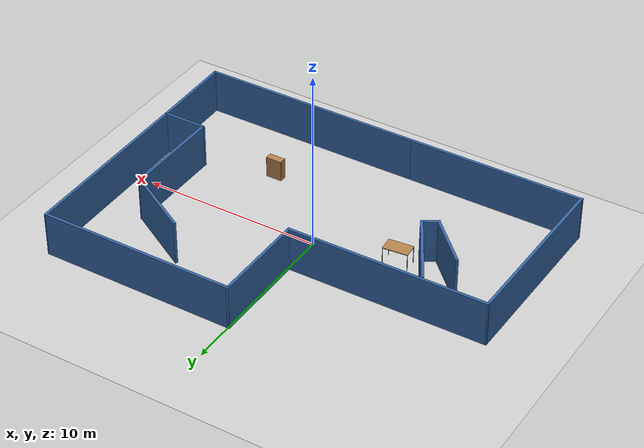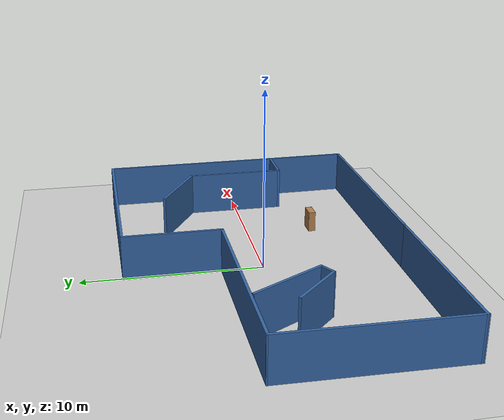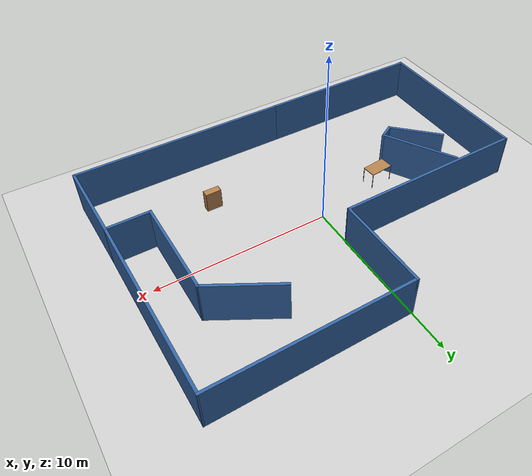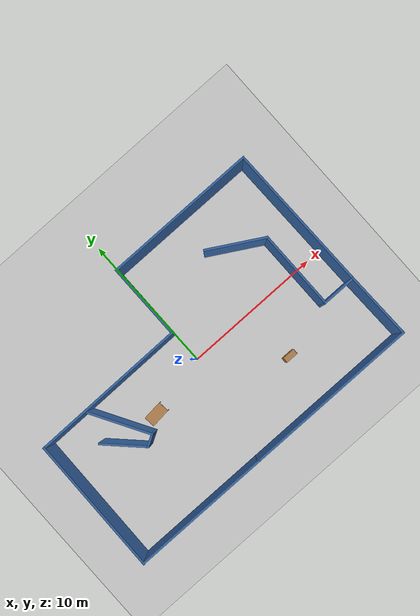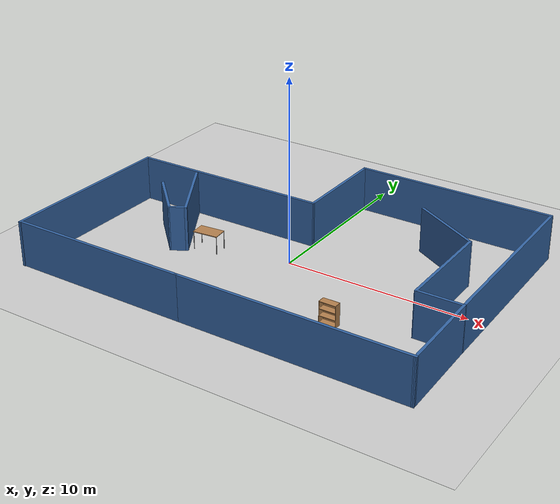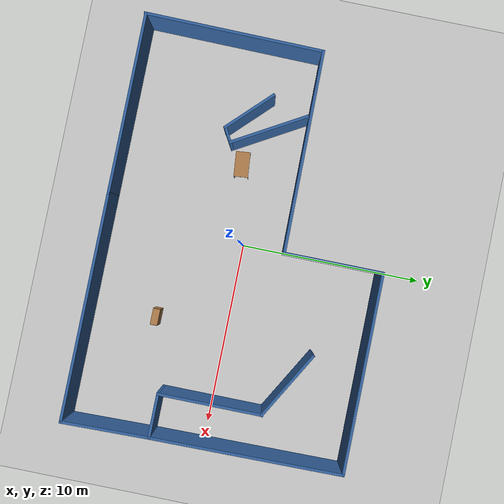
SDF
<sdf version="1.7">
 <world name="default">
  <light name="sun" type="directional">
   <pose>0 0 10 0 -0 0</pose>
   <diffuse>0.8 0.8 0.8 1</diffuse>
   <specular>0.1 0.1 0.1 1</specular>
   <attenuation>
    <range>1000</range>
    <constant>0.9</constant>
    <linear>0.01</linear>
    <quadratic>0.001</quadratic>
   </attenuation>
   <direction>-0.5 0.5 -1</direction>
   <spot><inner_angle>0</inner_angle><outer_angle>0</outer_angle><falloff>0</falloff></spot>
  </light>
  <model name="ground_plane">
   <static>1</static>
   <link name="link">
    <collision name="collision">
     <geometry><plane><normal>0 0 1</normal><size>100 100</size></plane></geometry>
     <surface><friction><ode><mu>100</mu><mu2>50</mu2></ode></friction></surface>
    </collision>
    <visual name="visual">
     <cast_shadows>0</cast_shadows>
     <geometry><plane><normal>0 0 1</normal><size>100 100</size></plane></geometry>
     <material>
      <script><uri>file://media/materials/scripts/gazebo.material</uri><name>Gazebo/Grey</name></script>
     </material>
    </visual>
   </link>
  </model>
  <gravity>0 0 -9.8</gravity>
  <magnetic_field>6e-06 2.3e-05 -4.2e-05</magnetic_field>
  <atmosphere type="adiabatic"/>
  <physics name="default_physics" default="0" type="ode">
   <max_step_size>0.001</max_step_size>
   <real_time_factor>1</real_time_factor>
   <real_time_update_rate>1000</real_time_update_rate>
  </physics>
  <scene><ambient>0.4 0.4 0.4 1</ambient><background>0.7 0.7 0.7 1</background><shadows>1</shadows></scene>
  <spherical_coordinates>
   <surface_model>EARTH_WGS84</surface_model>
   <latitude_deg>0</latitude_deg>
   <longitude_deg>0</longitude_deg>
   <elevation>0</elevation>
   <heading_deg>0</heading_deg>
  </spherical_coordinates>
  <model name="bookshelf">
   <static>1</static>
   <link name="link">
    <inertial><mass>1</mass></inertial>
    <collision name="back">
     <pose>0 0.005 0.6 0 -0 0</pose>
     <geometry><box><size>0.9 0.01 1.2</size></box></geometry>
    </collision>
    <visual name="visual1">
     <pose>0 0.005 0.6 0 -0 0</pose>
     <geometry><box><size>0.9 0.01 1.2</size></box></geometry>
     <material>
      <script><uri>file://media/materials/scripts/gazebo.material</uri><name>Gazebo/Wood</name></script>
     </material>
    </visual>
    <collision name="left_side">
     <pose>0.45 -0.195 0.6 0 -0 0</pose>
     <geometry><box><size>0.02 0.4 1.2</size></box></geometry>
    </collision>
    <visual name="visual2">
     <pose>0.45 -0.195 0.6 0 -0 0</pose>
     <geometry><box><size>0.02 0.4 1.2</size></box></geometry>
     <material>
      <script><uri>file://media/materials/scripts/gazebo.material</uri><name>Gazebo/Wood</name></script>
     </material>
    </visual>
    <collision name="right_side">
     <pose>-0.45 -0.195 0.6 0 -0 0</pose>
     <geometry><box><size>0.02 0.4 1.2</size></box></geometry>
    </collision>
    <visual name="visual3">
     <pose>-0.45 -0.195 0.6 0 -0 0</pose>
     <geometry><box><size>0.02 0.4 1.2</size></box></geometry>
     <material>
      <script><uri>file://media/materials/scripts/gazebo.material</uri><name>Gazebo/Wood</name></script>
     </material>
    </visual>
    <collision name="bottom">
     <pose>0 -0.195 0.03 0 -0 0</pose>
     <geometry><box><size>0.88 0.4 0.06</size></box></geometry>
    </collision>
    <visual name="visual4">
     <pose>0 -0.195 0.03 0 -0 0</pose>
     <geometry><box><size>0.88 0.4 0.06</size></box></geometry>
     <material>
      <script><uri>file://media/materials/scripts/gazebo.material</uri><name>Gazebo/Wood</name></script>
     </material>
    </visual>
    <collision name="top">
     <pose>0 -0.195 1.19 0 -0 0</pose>
     <geometry><box><size>0.88 0.4 0.02</size></box></geometry>
    </collision>
    <visual name="visual5">
     <pose>0 -0.195 1.19 0 -0 0</pose>
     <geometry><box><size>0.88 0.4 0.02</size></box></geometry>
     <material>
      <script><uri>file://media/materials/scripts/gazebo.material</uri><name>Gazebo/Wood</name></script>
     </material>
    </visual>
    <collision name="low_shelf">
     <pose>0 -0.195 0.43 0 -0 0</pose>
     <geometry><box><size>0.88 0.4 0.02</size></box></geometry>
    </collision>
    <visual name="visual6">
     <pose>0 -0.195 0.43 0 -0 0</pose>
     <geometry><box><size>0.88 0.4 0.02</size></box></geometry>
     <material>
      <script><uri>file://media/materials/scripts/gazebo.material</uri><name>Gazebo/Wood</name></script>
     </material>
    </visual>
    <collision name="high_shelf">
     <pose>0 -0.195 0.8 0 -0 0</pose>
     <geometry><box><size>0.88 0.4 0.02</size></box></geometry>
    </collision>
    <visual name="visual7">
     <pose>0 -0.195 0.8 0 -0 0</pose>
     <geometry><box><size>0.88 0.4 0.02</size></box></geometry>
     <material>
      <script><uri>file://media/materials/scripts/gazebo.material</uri><name>Gazebo/Wood</name></script>
     </material>
    </visual>
   </link>
   <pose>4.78412 -3.73836 0 0 -0 0</pose>
  </model>
  <model name="table">
   <static>0</static>
   <link name="link">
    <collision name="surface">
     <pose>0 0 1 0 -0 0</pose>
     <geometry><box><size>1.5 0.8 0.03</size></box></geometry>
     <surface><friction><ode><mu>0.6</mu><mu2>0.6</mu2></ode></friction></surface>
    </collision>
    <visual name="visual1">
     <pose>0 0 1 0 -0 0</pose>
     <geometry><box><size>1.4 0.8 0.04</size></box></geometry>
     <material>
      <script><uri>file://media/materials/scripts/gazebo.material</uri><name>Gazebo/Wood</name></script>
     </material>
    </visual>
    <collision name="front_left_leg">
     <pose>0.68 0.38 0.5 0 -0 0</pose>
     <geometry><cylinder><radius>0.02</radius><length>1</length></cylinder></geometry>
    </collision>
    <visual name="front_left_leg">
     <pose>0.68 0.38 0.5 0 -0 0</pose>
     <geometry><cylinder><radius>0.02</radius><length>1</length></cylinder></geometry>
     <material>
      <script><uri>file://media/materials/scripts/gazebo.material</uri><name>Gazebo/Grey</name></script>
     </material>
    </visual>
    <collision name="front_right_leg">
     <pose>0.68 -0.38 0.5 0 -0 0</pose>
     <geometry><cylinder><radius>0.02</radius><length>1</length></cylinder></geometry>
    </collision>
    <visual name="front_right_leg">
     <pose>0.68 -0.38 0.5 0 -0 0</pose>
     <geometry><cylinder><radius>0.02</radius><length>1</length></cylinder></geometry>
     <material>
      <script><uri>file://media/materials/scripts/gazebo.material</uri><name>Gazebo/Grey</name></script>
     </material>
    </visual>
    <collision name="back_right_leg">
     <pose>-0.68 -0.38 0.5 0 -0 0</pose>
     <geometry><cylinder><radius>0.02</radius><length>1</length></cylinder></geometry>
    </collision>
    <visual name="back_right_leg">
     <pose>-0.68 -0.38 0.5 0 -0 0</pose>
     <geometry><cylinder><radius>0.02</radius><length>1</length></cylinder></geometry>
     <material>
      <script><uri>file://media/materials/scripts/gazebo.material</uri><name>Gazebo/Grey</name></script>
     </material>
    </visual>
    <collision name="back_left_leg">
     <pose>-0.68 0.38 0.5 0 -0 0</pose>
     <geometry><cylinder><radius>0.02</radius><length>1</length></cylinder></geometry>
    </collision>
    <visual name="back_left_leg">
     <pose>-0.68 0.38 0.5 0 -0 0</pose>
     <geometry><cylinder><radius>0.02</radius><length>1</length></cylinder></geometry>
     <material>
      <script><uri>file://media/materials/scripts/gazebo.material</uri><name>Gazebo/Grey</name></script>
     </material>
    </visual>
    <inertial>
     <inertia><ixx>1</ixx><ixy>0</ixy><ixz>0</ixz><iyy>1</iyy><iyz>0</iyz><izz>1</izz></inertia>
     <mass>1</mass>
    </inertial>
   </link>
   <pose>-4.38999 -0.953243 -3e-06 1e-06 -0 0.096885</pose>
  </model>
  <model name="big_TD3">
   <pose>-0.038777 0.030455 0 0 -0 0</pose>
   <link name="Wall_0">
    <collision name="Wall_0_Collision">
     <geometry><box><size>10 0.15 2.5</size></box></geometry>
     <pose>0 0 1.25 0 -0 0</pose>
    </collision>
    <visual name="Wall_0_Visual">
     <pose>0 0 1.25 0 -0 0</pose>
     <geometry><box><size>10 0.15 2.5</size></box></geometry>
     <material>
      <script><uri>file://media/materials/scripts/gazebo.material</uri><name>Gazebo/Grey</name></script>
      <ambient>0.203922 0.396078 0.643137 1</ambient>
     </material>
     <meta><layer>0</layer></meta>
    </visual>
    <pose>-6.17528 -7.56874 0 0 -0 3.14159</pose>
   </link>
   <link name="Wall_1">
    <collision name="Wall_1_Collision">
     <geometry><box><size>9.91176 0.15 2.5</size></box></geometry>
     <pose>0 0 1.25 0 -0 0</pose>
    </collision>
    <visual name="Wall_1_Visual">
     <pose>0 0 1.25 0 -0 0</pose>
     <geometry><box><size>9.91176 0.15 2.5</size></box></geometry>
     <material>
      <script><uri>file://media/materials/scripts/gazebo.material</uri><name>Gazebo/Grey</name></script>
      <ambient>0.203922 0.396078 0.643137 1</ambient>
     </material>
     <meta><layer>0</layer></meta>
    </visual>
    <pose>-11.0338 -2.71492 0 0 -0 1.55717</pose>
   </link>
   <link name="Wall_10">
    <collision name="Wall_10_Collision">
     <geometry><box><size>4.25 0.15 2.5</size></box></geometry>
     <pose>0 0 1.25 0 -0 0</pose>
    </collision>
    <visual name="Wall_10_Visual">
     <pose>0 0 1.25 0 -0 0</pose>
     <geometry><box><size>4.25 0.15 2.5</size></box></geometry>
     <material>
      <script><uri>file://media/materials/scripts/gazebo.material</uri><name>Gazebo/Grey</name></script>
      <ambient>0.203922 0.396078 0.643137 1</ambient>
     </material>
     <meta><layer>0</layer></meta>
    </visual>
    <pose>6.87335 3.79336 0 0 -0 2.61799</pose>
   </link>
   <link name="Wall_12">
    <collision name="Wall_12_Collision">
     <geometry><box><size>12.5 0.15 2.5</size></box></geometry>
     <pose>0 0 1.25 0 -0 0</pose>
    </collision>
    <visual name="Wall_12_Visual">
     <pose>0 0 1.25 0 -0 0</pose>
     <geometry><box><size>12.5 0.15 2.5</size></box></geometry>
     <material>
      <script><uri>file://media/materials/scripts/gazebo.material</uri><name>Gazebo/Grey</name></script>
      <ambient>0.203922 0.396078 0.643137 1</ambient>
     </material>
     <meta><layer>0</layer></meta>
    </visual>
    <pose>4.92472 -7.56874 0 0 -0 0</pose>
   </link>
   <link name="Wall_13">
    <collision name="Wall_13_Collision">
     <geometry><box><size>4.88819 0.15 2.5</size></box></geometry>
     <pose>0 0 1.25 0 -0 0</pose>
    </collision>
    <visual name="Wall_13_Visual">
     <pose>0 0 1.25 0 -0 0</pose>
     <geometry><box><size>4.88819 0.15 2.5</size></box></geometry>
     <material>
      <script><uri>file://media/materials/scripts/gazebo.material</uri><name>Gazebo/Grey</name></script>
      <ambient>0.203922 0.396078 0.643137 1</ambient>
     </material>
     <meta><layer>0</layer></meta>
    </visual>
    <pose>11.0492 -5.20019 0 0 -0 1.59212</pose>
   </link>
   <link name="Wall_15">
    <collision name="Wall_15_Collision">
     <geometry><box><size>4.5 0.15 2.5</size></box></geometry>
     <pose>0 0 1.25 0 -0 0</pose>
    </collision>
    <visual name="Wall_15_Visual">
     <pose>0 0 1.25 0 -0 0</pose>
     <geometry><box><size>4.5 0.15 2.5</size></box></geometry>
     <material>
      <script><uri>file://media/materials/scripts/gazebo.material</uri><name>Gazebo/Grey</name></script>
      <ambient>0.203922 0.396078 0.643137 1</ambient>
     </material>
     <meta><layer>0</layer></meta>
    </visual>
    <pose>-6.29142 0.128902 0 0 -0 -1.0472</pose>
   </link>
   <link name="Wall_16">
    <collision name="Wall_16_Collision">
     <geometry><box><size>1 0.15 2.5</size></box></geometry>
     <pose>0 0 1.25 0 -0 0</pose>
    </collision>
    <visual name="Wall_16_Visual">
     <pose>0 0 1.25 0 -0 0</pose>
     <geometry><box><size>1 0.15 2.5</size></box></geometry>
     <material>
      <script><uri>file://media/materials/scripts/gazebo.material</uri><name>Gazebo/Grey</name></script>
      <ambient>0.203922 0.396078 0.643137 1</ambient>
     </material>
     <meta><layer>0</layer></meta>
    </visual>
    <pose>-5.57198 -1.9672 0 0 -0 -2.61799</pose>
   </link>
   <link name="Wall_17">
    <collision name="Wall_17_Collision">
     <geometry><box><size>3.25 0.15 2.5</size></box></geometry>
     <pose>0 0 1.25 0 -0 0</pose>
    </collision>
    <visual name="Wall_17_Visual">
     <pose>0 0 1.25 0 -0 0</pose>
     <geometry><box><size>3.25 0.15 2.5</size></box></geometry>
     <material>
      <script><uri>file://media/materials/scripts/gazebo.material</uri><name>Gazebo/Grey</name></script>
      <ambient>0.203922 0.396078 0.643137 1</ambient>
     </material>
     <meta><layer>0</layer></meta>
    </visual>
    <pose>-7.03606 -1.08369 0 0 -0 2.35619</pose>
   </link>
   <link name="Wall_2">
    <collision name="Wall_2_Collision">
     <geometry><box><size>11.1491 0.15 2.5</size></box></geometry>
     <pose>0 0 1.25 0 -0 0</pose>
    </collision>
    <visual name="Wall_2_Visual">
     <pose>0 0 1.25 0 -0 0</pose>
     <geometry><box><size>11.1491 0.15 2.5</size></box></geometry>
     <material>
      <script><uri>file://media/materials/scripts/gazebo.material</uri><name>Gazebo/Grey</name></script>
      <ambient>0.203922 0.396078 0.643137 1</ambient>
     </material>
     <meta><layer>0</layer></meta>
    </visual>
    <pose>-5.46789 2.20552 0 0 -0 0.007274</pose>
   </link>
   <link name="Wall_3">
    <collision name="Wall_3_Collision">
     <geometry><box><size>5.5 0.15 2.5</size></box></geometry>
     <pose>0 0 1.25 0 -0 0</pose>
    </collision>
    <visual name="Wall_3_Visual">
     <pose>0 0 1.25 0 -0 0</pose>
     <geometry><box><size>5.5 0.15 2.5</size></box></geometry>
     <material>
      <script><uri>file://media/materials/scripts/gazebo.material</uri><name>Gazebo/Grey</name></script>
      <ambient>0.203922 0.396078 0.643137 1</ambient>
     </material>
     <meta><layer>0</layer></meta>
    </visual>
    <pose>0.031511 4.92052 0 0 -0 1.5708</pose>
   </link>
   <link name="Wall_4">
    <collision name="Wall_4_Collision">
     <geometry><box><size>11 0.15 2.5</size></box></geometry>
     <pose>0 0 1.25 0 -0 0</pose>
    </collision>
    <visual name="Wall_4_Visual">
     <pose>0 0 1.25 0 -0 0</pose>
     <geometry><box><size>11 0.15 2.5</size></box></geometry>
     <material>
      <script><uri>file://media/materials/scripts/gazebo.material</uri><name>Gazebo/Grey</name></script>
      <ambient>0.203922 0.396078 0.643137 1</ambient>
     </material>
     <meta><layer>0</layer></meta>
    </visual>
    <pose>5.45651 7.59552 0 0 -0 0</pose>
   </link>
   <link name="Wall_6">
    <collision name="Wall_6_Collision">
     <geometry><box><size>10.5778 0.15 2.5</size></box></geometry>
     <pose>0 0 1.25 0 -0 0</pose>
    </collision>
    <visual name="Wall_6_Visual">
     <pose>0 0 1.25 0 -0 0</pose>
     <geometry><box><size>10.5778 0.15 2.5</size></box></geometry>
     <material>
      <script><uri>file://media/materials/scripts/gazebo.material</uri><name>Gazebo/Grey</name></script>
      <ambient>0.203922 0.396078 0.643137 1</ambient>
     </material>
     <meta><layer>0</layer></meta>
    </visual>
    <pose>10.9401 2.38194 0 0 -0 1.58204</pose>
   </link>
   <link name="Wall_8">
    <collision name="Wall_8_Collision">
     <geometry><box><size>2.5 0.15 2.5</size></box></geometry>
     <pose>0 0 1.25 0 -0 0</pose>
    </collision>
    <visual name="Wall_8_Visual">
     <pose>0 0 1.25 0 -0 0</pose>
     <geometry><box><size>2.5 0.15 2.5</size></box></geometry>
     <material>
      <script><uri>file://media/materials/scripts/gazebo.material</uri><name>Gazebo/Grey</name></script>
      <ambient>0.203922 0.396078 0.643137 1</ambient>
     </material>
     <meta><layer>0</layer></meta>
    </visual>
    <pose>9.8237 -2.83164 0 0 -0 3.14159</pose>
   </link>
   <link name="Wall_9">
    <collision name="Wall_9_Collision">
     <geometry><box><size>5.75 0.15 2.5</size></box></geometry>
     <pose>0 0 1.25 0 -0 0</pose>
    </collision>
    <visual name="Wall_9_Visual">
     <pose>0 0 1.25 0 -0 0</pose>
     <geometry><box><size>5.75 0.15 2.5</size></box></geometry>
     <material>
      <script><uri>file://media/materials/scripts/gazebo.material</uri><name>Gazebo/Grey</name></script>
      <ambient>0.203922 0.396078 0.643137 1</ambient>
     </material>
     <meta><layer>0</layer></meta>
    </visual>
    <pose>8.6487 -0.031637 0 0 -0 1.5708</pose>
   </link>
   <static>1</static>
  </model>
 </world>
</sdf>
